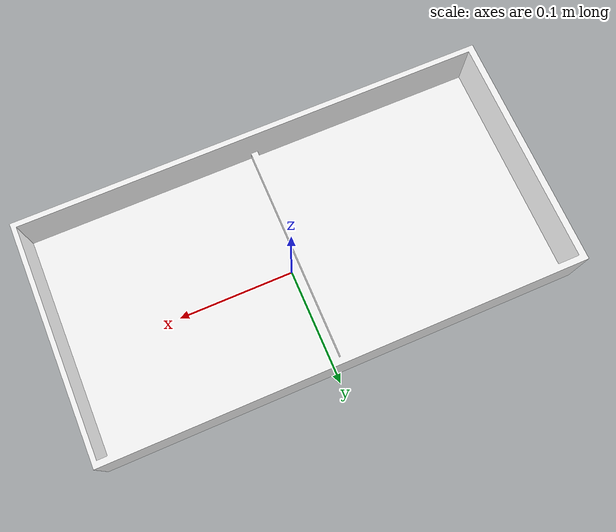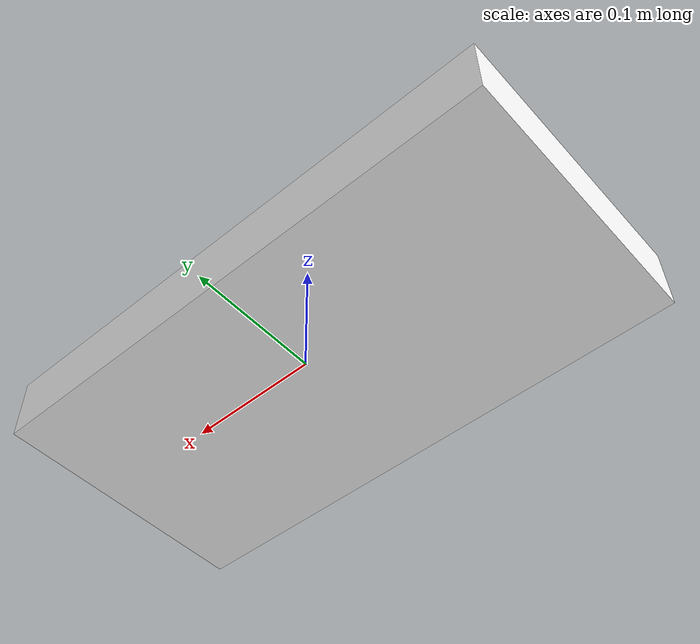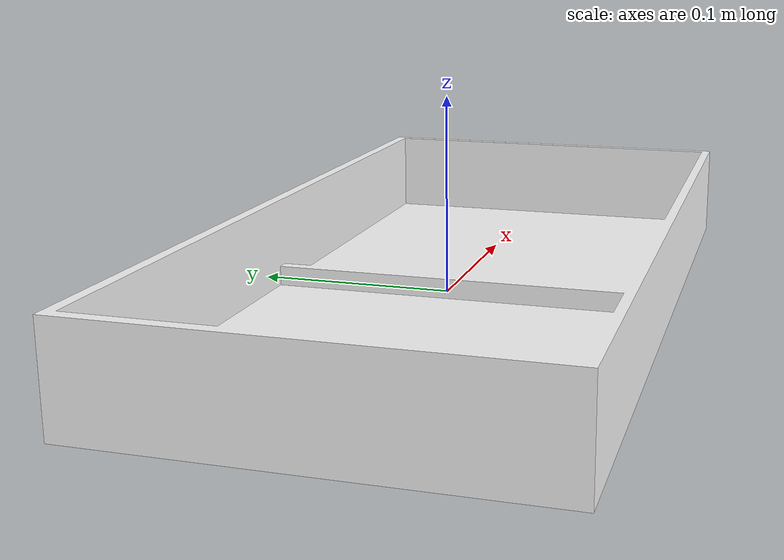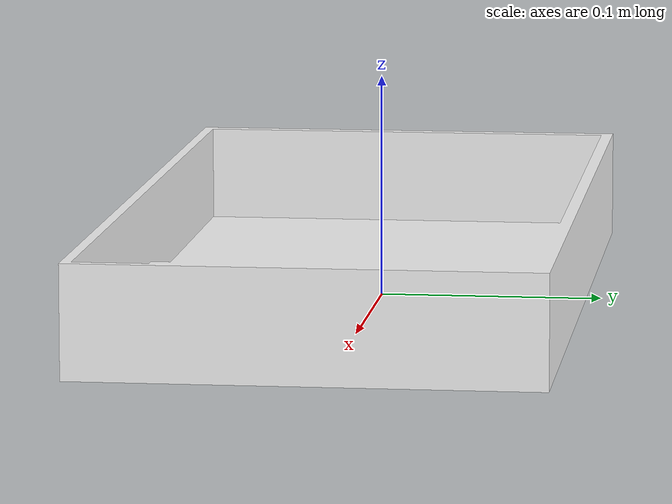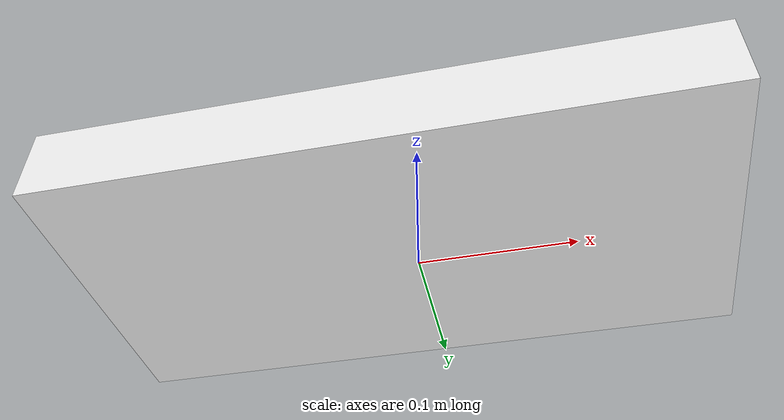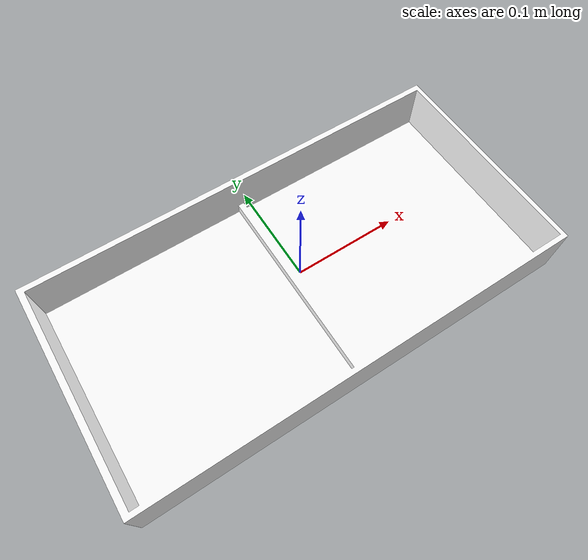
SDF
<?xml version='1.0'?>
<sdf version='1.6'>
  <model name='box2'>
    <link name="body">
      <visual name="visual">
        <pose frame=''>0 0 0.015 0 -0 0</pose>
        <geometry>
          <mesh><uri>model://box2/model.dae</uri>
            <scale>1 1 1</scale>

          </mesh>
        </geometry>
        <material>
          <script>
            <uri>model://box2/materials/scripts</uri>
            <uri>model://box2/materials/textures</uri>
            <name>box2color</name>
          </script>
          <shader type='vertex'>
            <normal_map>__default__</normal_map>
          </shader>
          <ambient>1 1 1 1</ambient>
          <diffuse>1 1 1 1</diffuse>
          <specular>0 0 0 1</specular>
          <emissive>0 0 0 1</emissive>
        </material>
      </visual>

      <collision name='collision_0'>
        <laser_retro>0</laser_retro>
        <max_contacts>10</max_contacts>
        <pose frame=''>-0.005 0 0.0 0 -0 0</pose>
        <geometry>
          <box>
            <size>0.42 0.21 0.005</size>
          </box>
        </geometry>
        <surface>
          <friction>
            <ode>
              <mu>1</mu>
              <mu2>1</mu2>
              <fdir1>0 0 0</fdir1>
              <slip1>0</slip1>
              <slip2>0</slip2>
            </ode>
            <torsional>
              <coefficient>1</coefficient>
              <patch_radius>0</patch_radius>
              <surface_radius>0</surface_radius>
              <use_patch_radius>1</use_patch_radius>
              <ode>
                <slip>0</slip>
              </ode>
            </torsional>
          </friction>
          <bounce>
            <restitution_coefficient>0</restitution_coefficient>
            <threshold>1e+06</threshold>
          </bounce>
          <contact>
            <collide_without_contact>0</collide_without_contact>
            <collide_without_contact_bitmask>1</collide_without_contact_bitmask>
            <collide_bitmask>1</collide_bitmask>
            <ode>
              <soft_cfm>0</soft_cfm>
              <soft_erp>0.2</soft_erp>
              <kp>1e+13</kp>
              <kd>1</kd>
              <max_vel>0.01</max_vel>
              <min_depth>0</min_depth>
            </ode>
            <bullet>
              <split_impulse>1</split_impulse>
              <split_impulse_penetration_threshold>-0.01</split_impulse_penetration_threshold>
              <soft_cfm>0</soft_cfm>
              <soft_erp>0.2</soft_erp>
              <kp>1e+13</kp>
              <kd>1</kd>
            </bullet>
          </contact>
        </surface>
      </collision>
    </link>
    <static>1</static>
  </model>
</sdf>
